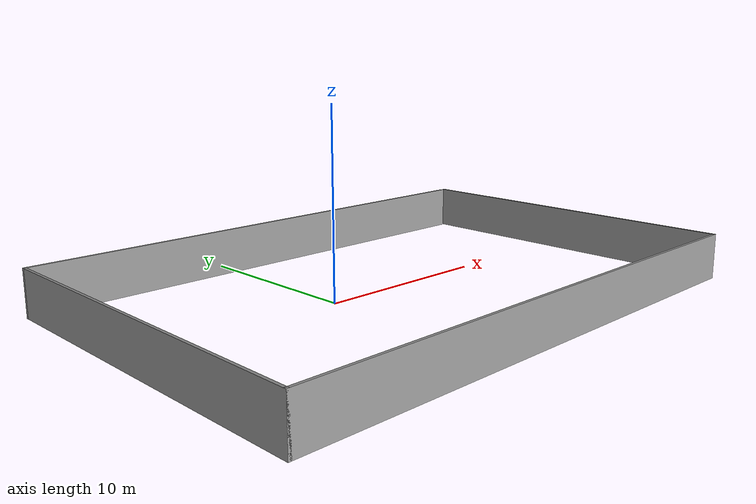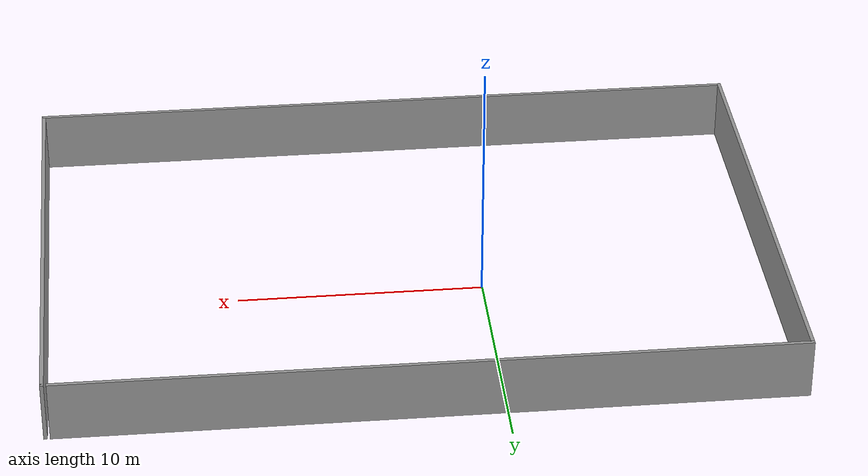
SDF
<?xml version='1.0'?>
<sdf version='1.7'>
  <model name='walls'>
    <pose>2.99388 -1.3363 0 0 -0 0</pose>
    <link name='Wall_10'>
      <collision name='Wall_10_Collision'>
        <geometry>
          <box>
            <size>0.15 0.15 2.5</size>
          </box>
        </geometry>
        <pose>0 0 1.25 0 -0 0</pose>
      </collision>
      <visual name='Wall_10_Visual'>
        <pose>0 0 1.25 0 -0 0</pose>
        <geometry>
          <box>
            <size>0.15 0.15 2.5</size>
          </box>
        </geometry>
        <material>
          <script>
            <uri>file://media/materials/scripts/gazebo.material</uri>
            <name>Gazebo/Grey</name>
          </script>
          <ambient>1 1 1 1</ambient>
        </material>
        <meta>
          <layer>0</layer>
        </meta>
      </visual>
      <pose>14.8 9.925 0 0 -0 0</pose>
    </link>
    <link name='Wall_3'>
      <collision name='Wall_3_Collision'>
        <geometry>
          <box>
            <size>29.5 0.15 2.5</size>
          </box>
        </geometry>
        <pose>0 0 1.25 0 -0 0</pose>
      </collision>
      <visual name='Wall_3_Visual'>
        <pose>0 0 1.25 0 -0 0</pose>
        <geometry>
          <box>
            <size>29.5 0.15 2.5</size>
          </box>
        </geometry>
        <material>
          <script>
            <uri>file://media/materials/scripts/gazebo.material</uri>
            <name>Gazebo/Grey</name>
          </script>
          <ambient>1 1 1 1</ambient>
        </material>
        <meta>
          <layer>0</layer>
        </meta>
      </visual>
      <pose>-0.125 9.925 0 0 -0 3.14159</pose>
    </link>
    <link name='Wall_6'>
      <collision name='Wall_6_Collision'>
        <geometry>
          <box>
            <size>20 0.15 2.5</size>
          </box>
        </geometry>
        <pose>0 0 1.25 0 -0 0</pose>
      </collision>
      <visual name='Wall_6_Visual'>
        <pose>0 0 1.25 0 -0 0</pose>
        <geometry>
          <box>
            <size>20 0.15 2.5</size>
          </box>
        </geometry>
        <material>
          <script>
            <uri>file://media/materials/scripts/gazebo.material</uri>
            <name>Gazebo/Grey</name>
          </script>
          <ambient>1 1 1 1</ambient>
        </material>
        <meta>
          <layer>0</layer>
        </meta>
      </visual>
      <pose>-14.8 0 0 0 -0 -1.5708</pose>
    </link>
    <link name='Wall_7'>
      <collision name='Wall_7_Collision'>
        <geometry>
          <box>
            <size>29.75 0.15 2.5</size>
          </box>
        </geometry>
        <pose>0 0 1.25 0 -0 0</pose>
      </collision>
      <visual name='Wall_7_Visual'>
        <pose>0 0 1.25 0 -0 0</pose>
        <geometry>
          <box>
            <size>29.75 0.15 2.5</size>
          </box>
        </geometry>
        <material>
          <script>
            <uri>file://media/materials/scripts/gazebo.material</uri>
            <name>Gazebo/Grey</name>
          </script>
          <ambient>1 1 1 1</ambient>
        </material>
        <meta>
          <layer>0</layer>
        </meta>
      </visual>
      <pose>0 -9.925 0 0 -0 0</pose>
    </link>
    <link name='Wall_8'>
      <collision name='Wall_8_Collision'>
        <geometry>
          <box>
            <size>20 0.15 2.5</size>
          </box>
        </geometry>
        <pose>0 0 1.25 0 -0 0</pose>
      </collision>
      <visual name='Wall_8_Visual'>
        <pose>0 0 1.25 0 -0 0</pose>
        <geometry>
          <box>
            <size>20 0.15 2.5</size>
          </box>
        </geometry>
        <material>
          <script>
            <uri>file://media/materials/scripts/gazebo.material</uri>
            <name>Gazebo/Grey</name>
          </script>
          <ambient>1 1 1 1</ambient>
        </material>
        <meta>
          <layer>0</layer>
        </meta>
      </visual>
      <pose>14.8 0 0 0 -0 1.5708</pose>
    </link>
    <link name='Wall_9'>
      <collision name='Wall_9_Collision'>
        <geometry>
          <box>
            <size>0.15 0.15 2.5</size>
          </box>
        </geometry>
        <pose>0 0 1.25 0 -0 0</pose>
      </collision>
      <visual name='Wall_9_Visual'>
        <pose>0 0 1.25 0 -0 0</pose>
        <geometry>
          <box>
            <size>0.15 0.15 2.5</size>
          </box>
        </geometry>
        <material>
          <script>
            <uri>file://media/materials/scripts/gazebo.material</uri>
            <name>Gazebo/Grey</name>
          </script>
          <ambient>1 1 1 1</ambient>
        </material>
        <meta>
          <layer>0</layer>
        </meta>
      </visual>
      <pose>14.8 9.925 0 0 -0 0</pose>
    </link>
    <static>1</static>
  </model>
</sdf>
